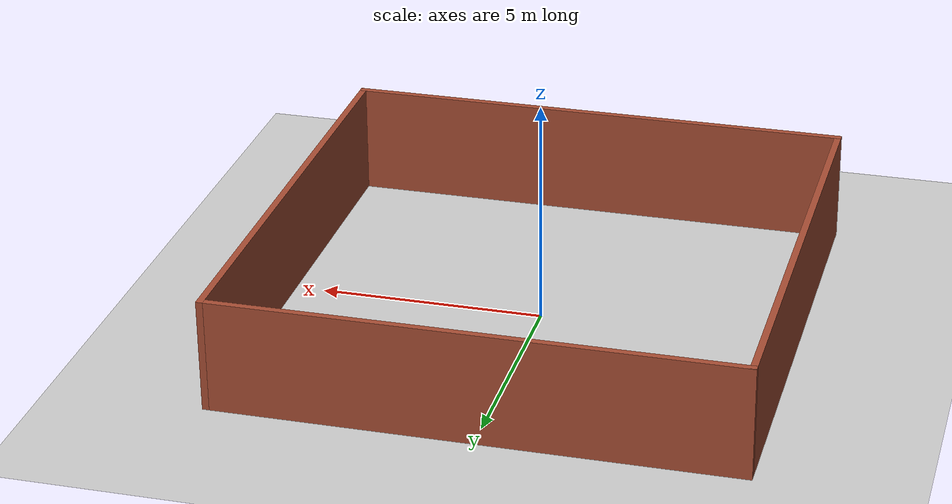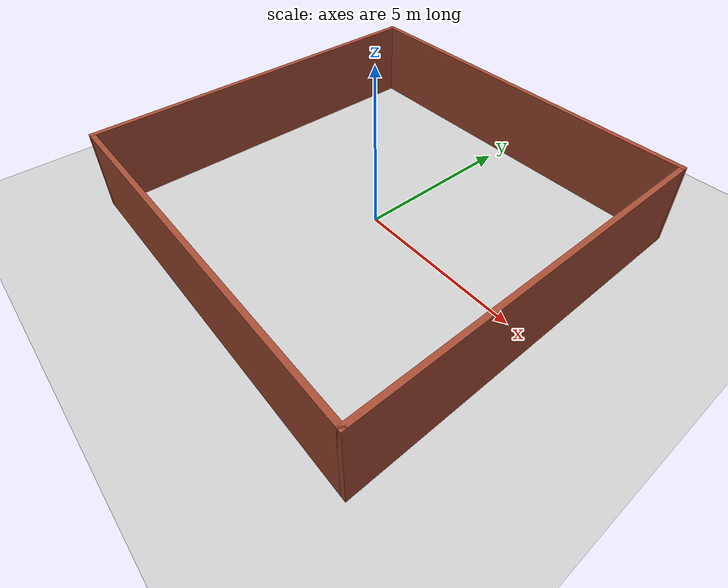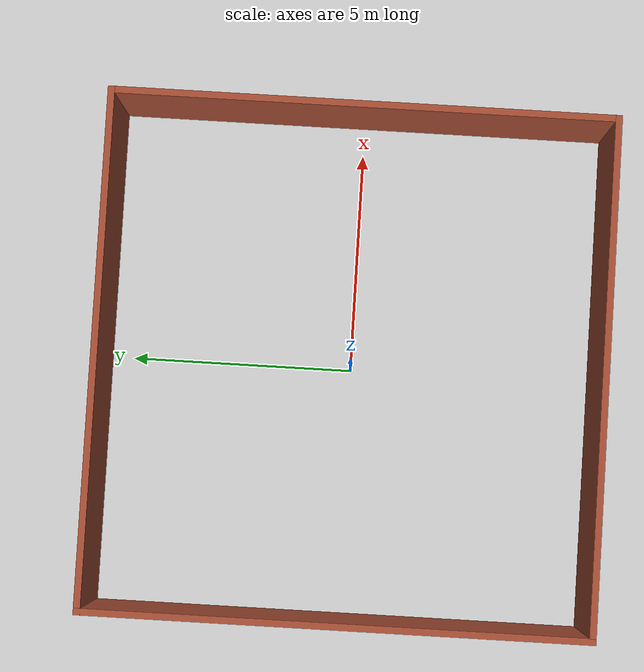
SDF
<sdf version="1.7">
 <world name="default">
  <light name="sun" type="directional">
   <pose>0 0 10 0 -0 0</pose>
   <diffuse>0.8 0.8 0.8 1</diffuse>
   <specular>0.2 0.2 0.2 1</specular>
   <attenuation>
    <range>1000</range>
    <constant>0.9</constant>
    <linear>0.01</linear>
    <quadratic>0.001</quadratic>
   </attenuation>
   <direction>-0.5 0.1 -0.9</direction>
   <spot><inner_angle>0</inner_angle><outer_angle>0</outer_angle><falloff>0</falloff></spot>
  </light>
  <plugin name="gazebo_ros_state" filename="libgazebo_ros_state.so">
   <ros>
    <namespace>/</namespace>
    <remapping>model_states:=model_states</remapping>
    <remapping>link_states:=link_states</remapping>
   </ros>
   <update_rate>1.0</update_rate>
  </plugin>
  <model name="ground_plane">
   <static>1</static>
   <link name="link">
    <collision name="collision">
     <geometry><plane><normal>0 0 1</normal><size>100 100</size></plane></geometry>
     <surface><friction><ode><mu>100</mu><mu2>50</mu2></ode></friction></surface>
    </collision>
    <visual name="visual">
     <cast_shadows>0</cast_shadows>
     <geometry><plane><normal>0 0 1</normal><size>100 100</size></plane></geometry>
     <material>
      <script><uri>file://media/materials/scripts/gazebo.material</uri><name>Gazebo/Grey</name></script>
     </material>
    </visual>
   </link>
  </model>
  <gravity>0 0 -9.8</gravity>
  <magnetic_field>6e-06 2.3e-05 -4.2e-05</magnetic_field>
  <atmosphere type="adiabatic"/>
  <physics type="ode">
   <max_step_size>0.01</max_step_size>
   <real_time_factor>1</real_time_factor>
   <real_time_update_rate>100</real_time_update_rate>
  </physics>
  <scene><ambient>0.4 0.4 0.4 1</ambient><background>0.7 0.7 0.7 1</background><shadows>false</shadows></scene>
  <audio><device>default</device></audio>
  <spherical_coordinates>
   <surface_model>EARTH_WGS84</surface_model>
   <latitude_deg>0</latitude_deg>
   <longitude_deg>0</longitude_deg>
   <elevation>0</elevation>
   <heading_deg>0</heading_deg>
  </spherical_coordinates>
  <model name="square">
   <pose>0.046412 0.016216 0 0 -0 0</pose>
   <link name="Wall_5">
    <collision name="Wall_5_Collision">
     <geometry><box><size>11.5 0.15 2.5</size></box></geometry>
     <pose>0 0 1.25 0 -0 0</pose>
    </collision>
    <visual name="Wall_5_Visual">
     <pose>0 0 1.25 0 -0 0</pose>
     <geometry><box><size>11.5 0.15 2.5</size></box></geometry>
     <material>
      <script><uri>file://media/materials/scripts/gazebo.material</uri><name>Gazebo/Bricks</name></script>
      <ambient>1 1 1 1</ambient>
     </material>
     <meta><layer>0</layer></meta>
    </visual>
    <pose>0 -5.55 0 0 -0 0</pose>
   </link>
   <link name="Wall_6">
    <collision name="Wall_6_Collision">
     <geometry><box><size>11.25 0.15 2.5</size></box></geometry>
     <pose>0 0 1.25 0 -0 0</pose>
    </collision>
    <visual name="Wall_6_Visual">
     <pose>0 0 1.25 0 -0 0</pose>
     <geometry><box><size>11.25 0.15 2.5</size></box></geometry>
     <material>
      <script><uri>file://media/materials/scripts/gazebo.material</uri><name>Gazebo/Bricks</name></script>
      <ambient>1 1 1 1</ambient>
     </material>
     <meta><layer>0</layer></meta>
    </visual>
    <pose>5.675 0 0 0 -0 1.5708</pose>
   </link>
   <link name="Wall_7">
    <collision name="Wall_7_Collision">
     <geometry><box><size>11.5 0.15 2.5</size></box></geometry>
     <pose>0 0 1.25 0 -0 0</pose>
    </collision>
    <visual name="Wall_7_Visual">
     <pose>0 0 1.25 0 -0 0</pose>
     <geometry><box><size>11.5 0.15 2.5</size></box></geometry>
     <material>
      <script><uri>file://media/materials/scripts/gazebo.material</uri><name>Gazebo/Bricks</name></script>
      <ambient>1 1 1 1</ambient>
     </material>
     <meta><layer>0</layer></meta>
    </visual>
    <pose>0 5.55 0 0 -0 3.14159</pose>
   </link>
   <link name="Wall_8">
    <collision name="Wall_8_Collision">
     <geometry><box><size>11.25 0.15 2.5</size></box></geometry>
     <pose>0 0 1.25 0 -0 0</pose>
    </collision>
    <visual name="Wall_8_Visual">
     <pose>0 0 1.25 0 -0 0</pose>
     <geometry><box><size>11.25 0.15 2.5</size></box></geometry>
     <material>
      <script><uri>file://media/materials/scripts/gazebo.material</uri><name>Gazebo/Bricks</name></script>
      <ambient>1 1 1 1</ambient>
     </material>
     <meta><layer>0</layer></meta>
    </visual>
    <pose>-5.675 0 0 0 -0 -1.5708</pose>
   </link>
   <static>1</static>
  </model>
 </world>
</sdf>
